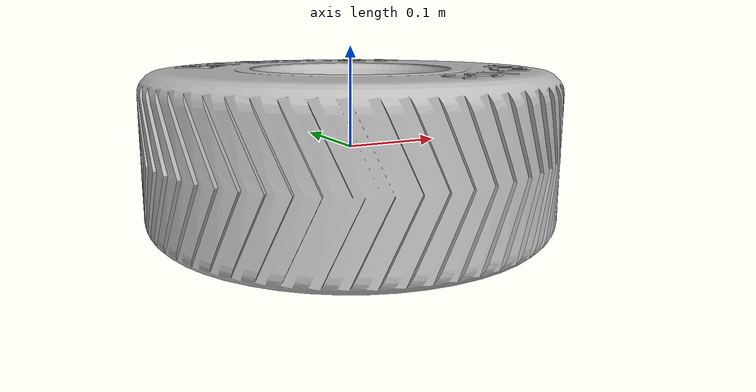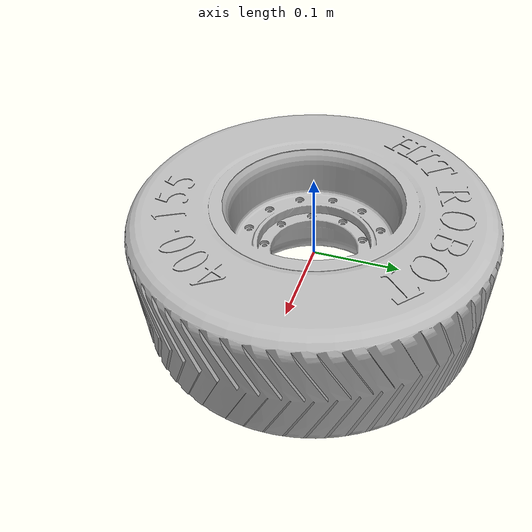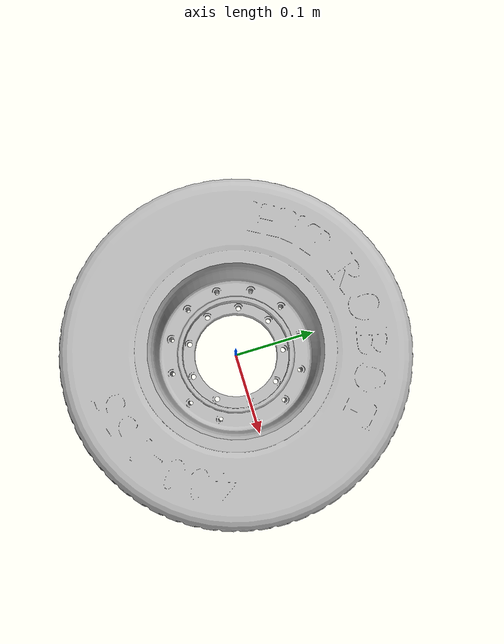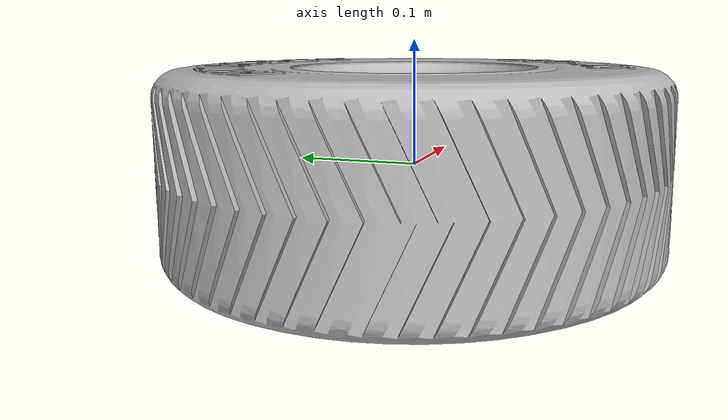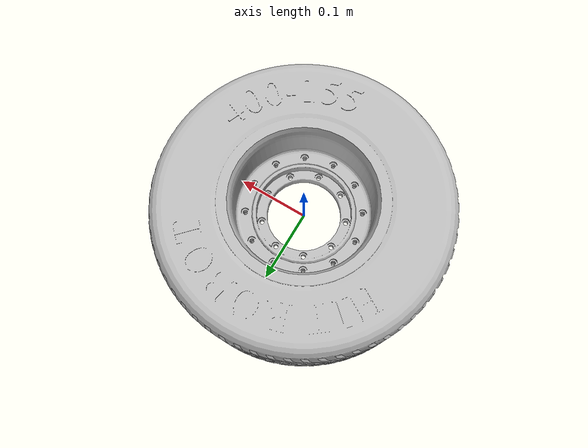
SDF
<?xml version="1.0" ?>
<sdf version="1.6">
  <model name="school">
    <static>true</static>
    <link name="link">
      <collision name="collision">
        <geometry>
          <mesh>
            <uri>model://stl_test/meshes/wheel_lb.STL</uri>
          </mesh>
        </geometry>
      </collision>
      <visual name="visual">
        <geometry>
          <mesh>
            <uri>model://stl_test/meshes/wheel_lb.STL</uri>
          </mesh>
        </geometry>
	<material>
            <script>Gazebo/Green</script>
        </material>
      </visual>
    </link>
  </model>
</sdf>
